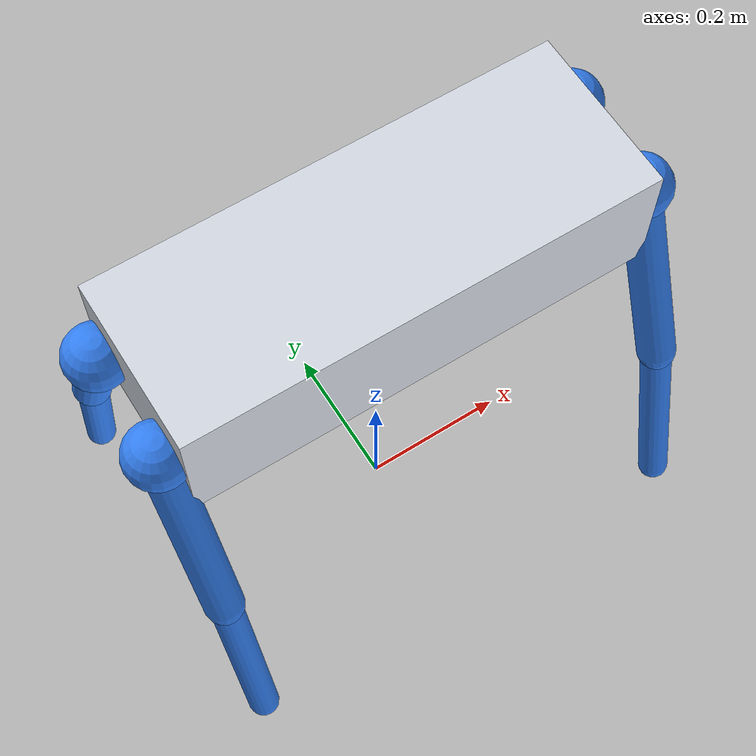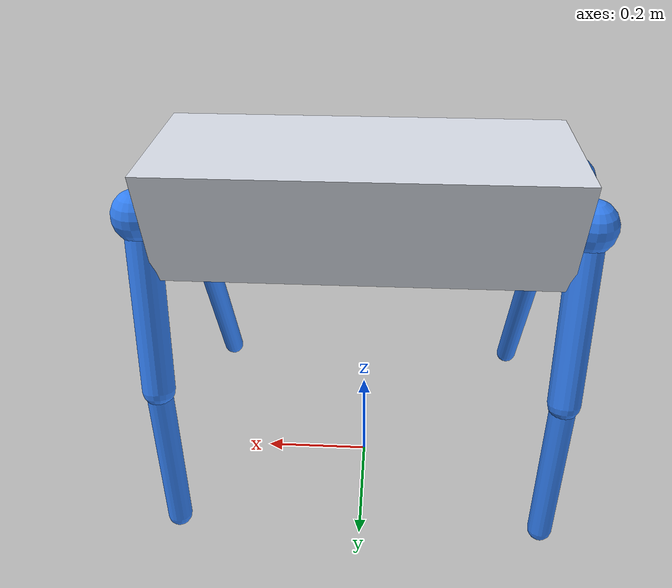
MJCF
<mujoco model="m20_retarget">
  <compiler angle="radian" autolimits="true"/>
  <option timestep="0.02" gravity="0 0 -9.81"/>

  <default>
    <joint damping="0" armature="0"/>
    <geom contype="0" conaffinity="0" density="100"/>
    <site size="0.014" rgba="0.1 0.55 0.95 1"/>
  </default>

  <worldbody>
    <light name="retarget_light" pos="1 -1 3" dir="-0.25 0.25 -1"/>
    <body name="base" pos="0 0 0.58">
      <freejoint name="root"/>
      <geom name="base_visual" type="box" size="0.30 0.11 0.08" rgba="0.84 0.86 0.90 1"/>
      <site name="base_site" pos="0 0 0"/>

      <body name="fl_hipx" pos="0.3141 0.0685 0">
        <joint name="fl_hipx_joint" type="hinge" axis="1 0 0" range="-0.436 0.611"/>
        <geom type="sphere" size="0.040" rgba="0.2 0.5 0.95 1"/>
        <site name="fl_hipx_site" pos="0 0 0"/>
        <body name="fl_hipy" pos="0 0 0">
          <joint name="fl_hipy_joint" type="hinge" axis="0 1 0" range="-2.583 2.286"/>
          <geom type="capsule" fromto="0 0 0 0 0.0984 -0.25" size="0.025" rgba="0.2 0.5 0.95 1"/>
          <site name="fl_hipy_site" pos="0 0 0"/>
          <body name="fl_knee" pos="0 0.0984 -0.25">
            <joint name="fl_knee_joint" type="hinge" axis="0 1 0" range="-2.792 2.809"/>
            <geom type="capsule" fromto="0 0 0 0 0.059676 -0.25" size="0.020" rgba="0.2 0.5 0.95 1"/>
            <site name="fl_knee_site" pos="0 0 0"/>
            <site name="fl_wheel_site" pos="0 0.059676 -0.25"/>
          </body>
        </body>
      </body>

      <body name="fr_hipx" pos="0.3141 -0.0685 0">
        <joint name="fr_hipx_joint" type="hinge" axis="1 0 0" range="-0.611 0.436"/>
        <geom type="sphere" size="0.040" rgba="0.2 0.5 0.95 1"/>
        <site name="fr_hipx_site" pos="0 0 0"/>
        <body name="fr_hipy" pos="0 0 0">
          <joint name="fr_hipy_joint" type="hinge" axis="0 1 0" range="-2.583 2.286"/>
          <geom type="capsule" fromto="0 0 0 0 -0.0984 -0.25" size="0.025" rgba="0.2 0.5 0.95 1"/>
          <site name="fr_hipy_site" pos="0 0 0"/>
          <body name="fr_knee" pos="0 -0.0984 -0.25">
            <joint name="fr_knee_joint" type="hinge" axis="0 1 0" range="-2.792 2.809"/>
            <geom type="capsule" fromto="0 0 0 0 -0.059676 -0.25" size="0.020" rgba="0.2 0.5 0.95 1"/>
            <site name="fr_knee_site" pos="0 0 0"/>
            <site name="fr_wheel_site" pos="0 -0.059676 -0.25"/>
          </body>
        </body>
      </body>

      <body name="hl_hipx" pos="-0.3141 0.0685 0">
        <joint name="hl_hipx_joint" type="hinge" axis="1 0 0" range="-0.436 0.611"/>
        <geom type="sphere" size="0.040" rgba="0.2 0.5 0.95 1"/>
        <site name="hl_hipx_site" pos="0 0 0"/>
        <body name="hl_hipy" pos="0 0 0">
          <joint name="hl_hipy_joint" type="hinge" axis="0 1 0" range="-2.286 2.583"/>
          <geom type="capsule" fromto="0 0 0 0 0.0984 -0.25" size="0.025" rgba="0.2 0.5 0.95 1"/>
          <site name="hl_hipy_site" pos="0 0 0"/>
          <body name="hl_knee" pos="0 0.0984 -0.25">
            <joint name="hl_knee_joint" type="hinge" axis="0 1 0" range="-2.809 2.792"/>
            <geom type="capsule" fromto="0 0 0 0 0.059676 -0.25" size="0.020" rgba="0.2 0.5 0.95 1"/>
            <site name="hl_knee_site" pos="0 0 0"/>
            <site name="hl_wheel_site" pos="0 0.059676 -0.25"/>
          </body>
        </body>
      </body>

      <body name="hr_hipx" pos="-0.3141 -0.0685 0">
        <joint name="hr_hipx_joint" type="hinge" axis="1 0 0" range="-0.611 0.436"/>
        <geom type="sphere" size="0.040" rgba="0.2 0.5 0.95 1"/>
        <site name="hr_hipx_site" pos="0 0 0"/>
        <body name="hr_hipy" pos="0 0 0">
          <joint name="hr_hipy_joint" type="hinge" axis="0 1 0" range="-2.286 2.583"/>
          <geom type="capsule" fromto="0 0 0 0 -0.0984 -0.25" size="0.025" rgba="0.2 0.5 0.95 1"/>
          <site name="hr_hipy_site" pos="0 0 0"/>
          <body name="hr_knee" pos="0 -0.0984 -0.25">
            <joint name="hr_knee_joint" type="hinge" axis="0 1 0" range="-2.809 2.792"/>
            <geom type="capsule" fromto="0 0 0 0 -0.059676 -0.25" size="0.020" rgba="0.2 0.5 0.95 1"/>
            <site name="hr_knee_site" pos="0 0 0"/>
            <site name="hr_wheel_site" pos="0 -0.059676 -0.25"/>
          </body>
        </body>
      </body>
    </body>
  </worldbody>
</mujoco>
